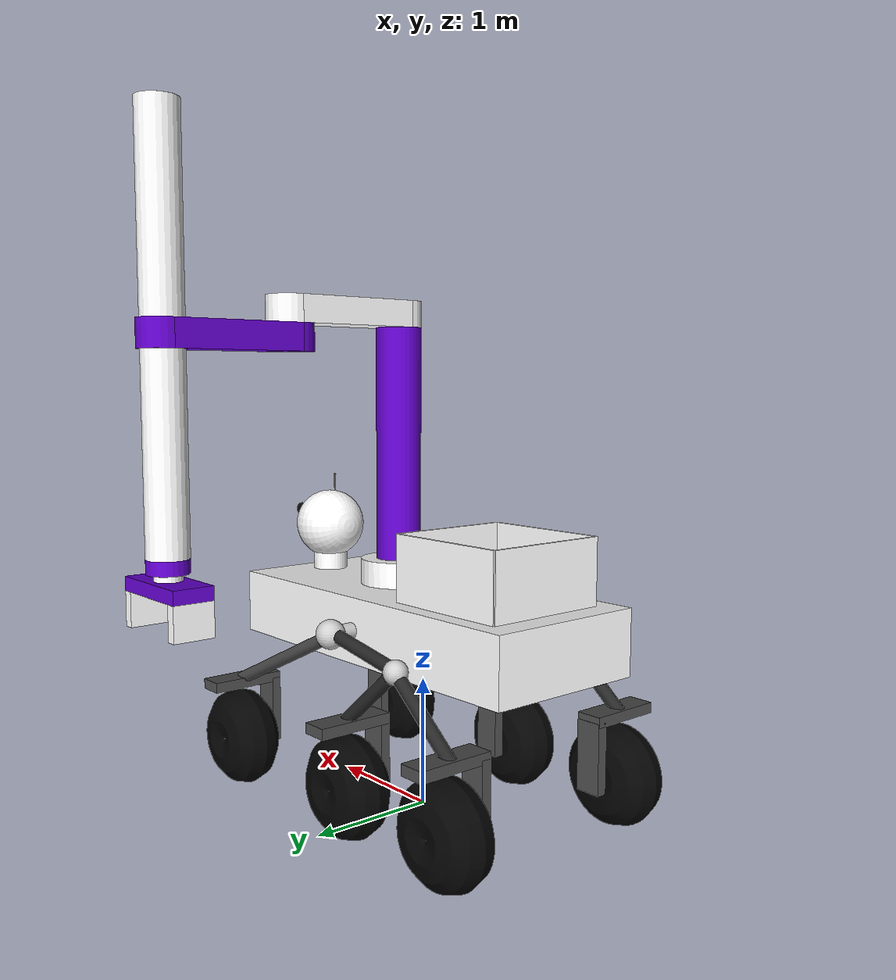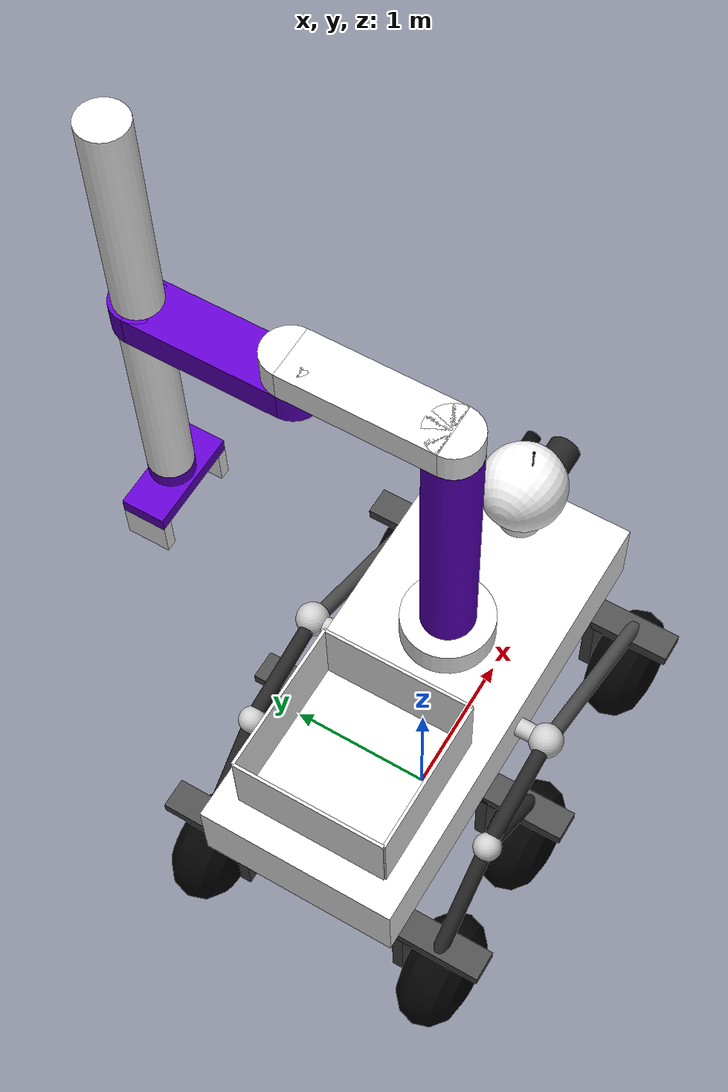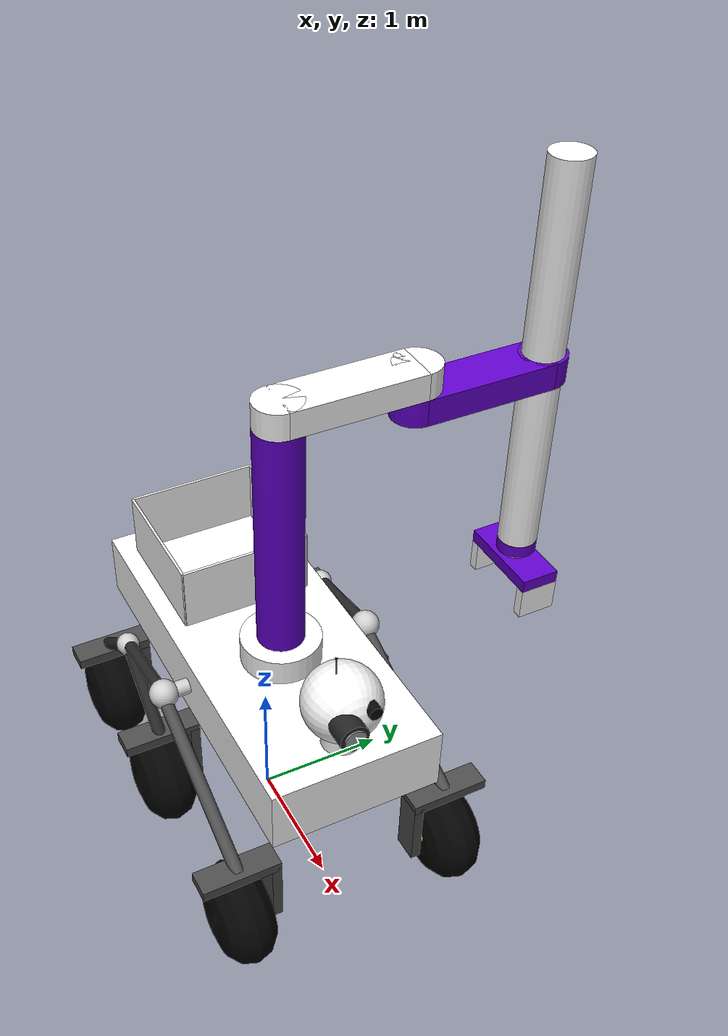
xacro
<?xml version="1.0"?>
<!-- created with Phobos 1.0.1 "Capricious Choutengan" -->
<robot name="speedy" xmlns:xacro="http://wiki.ros.org/xacro">
    <!-- INCLUDES -->
    <xacro:include filename="$(find speedy_description)/urdf/base/robot_base.urdf.xacro"/>
    <xacro:include filename="$(find speedy_description)/urdf/wheels/wheels_chasis.urdf.xacro"/>
    <xacro:include filename="$(find speedy_description)/urdf/wheels/rover_wheel.urdf.xacro"/>
    <xacro:include filename="$(find speedy_description)/urdf/utils/utils.urdf.xacro"/>
    <xacro:include filename="$(find speedy_description)/urdf/arm/scara.urdf.xacro"/>
    <xacro:include filename="$(find speedy_description)/urdf/arm/gripper.urdf.xacro"/>
    <xacro:include filename="$(find speedy_description)/urdf/sensors/sensor_camera.urdf.xacro"/>
    <xacro:include filename="$(find speedy_description)/urdf/sensors/sensor_imu.urdf.xacro"/>

    <!-- ARGUMENTS -->
    <xacro:arg name="robot_ns" default=""/>
    <xacro:arg name="prefix" default=""/>
    <xacro:arg name="init_scara_yaw" default="${PI/2}"/>

    <!-- PROPERTIES -->
    <xacro:property name="right_wheels_chasis_offset"
                    value="0.05549 -0.67542 0.00000"/>

    <xacro:property name="left_wheels_chasis_offset"
                    value="0.05549 0.67542 0.00000"/>

    <xacro:property name="front_wheel_x_offset" value="1.3225"/>
    <xacro:property name="mid_wheel_x_offset" value="-0.149999"/>
    <xacro:property name="back_wheel_x_offset" value="-1.21623"/>

    <xacro:property name="wheel_y_offset" value="0.850214"/>

    <xacro:property name="wheel_z_offset" value="-1.08428"/>

    <xacro:property name="fr_wheel_xyz"
                    value="${front_wheel_x_offset} ${-wheel_y_offset} ${wheel_z_offset}"/>

    <xacro:property name="mr_wheel_xyz"
                    value="${mid_wheel_x_offset} ${-wheel_y_offset} ${wheel_z_offset}"/>

    <xacro:property name="br_wheel_xyz"
                    value="${back_wheel_x_offset} ${-wheel_y_offset} ${wheel_z_offset}"/>

    <xacro:property name="fl_wheel_xyz"
                    value="${front_wheel_x_offset} ${wheel_y_offset} ${wheel_z_offset}"/>

    <xacro:property name="ml_wheel_xyz"
                    value="${mid_wheel_x_offset} ${wheel_y_offset} ${wheel_z_offset}"/>

    <xacro:property name="bl_wheel_xyz"
                    value="${back_wheel_x_offset} ${wheel_y_offset} ${wheel_z_offset}"/>

    <xacro:property name="right_wheels_rpy"
                    value="${-PI/2} 0.00000 0.0000"/>

    <xacro:property name="left_wheels_rpy"
                    value="${PI/2} 0.00000 0.0000"/>

    <!-- ROBOT PARTS -->

    <!-- base -->
    <xacro:robot_base   base_height="1.47428"
                        white_material="Material.008"
                        prefix="$(arg prefix)"/>

    <!-- wheels -->
    <xacro:wheels_chasis  side="right"
                          xyz="${right_wheels_chasis_offset}"
                          parent_link="$(arg prefix)base_link"
                          prefix="$(arg prefix)"/>

    <xacro:rover_wheel  side="right"
                        pos="front"
                        parent_link="$(arg prefix)base_link"
                        xyz="${fr_wheel_xyz}"
                        rpy="${right_wheels_rpy}"
                        wheel_material="Material.009"
                        prefix="$(arg prefix)"/>

    <xacro:rover_wheel  side="right"
                        pos="mid"
                        parent_link="$(arg prefix)base_link"
                        xyz="${mr_wheel_xyz}"
                        rpy="${right_wheels_rpy}"
                        wheel_material="Material.009"
                        prefix="$(arg prefix)"/>

    <xacro:rover_wheel  side="right"
                        pos="back"
                        parent_link="$(arg prefix)base_link"
                        xyz="${br_wheel_xyz}"
                        rpy="${right_wheels_rpy}"
                        wheel_material="Material.009"
                        prefix="$(arg prefix)"/>

    <xacro:wheels_chasis  side="left"
                          xyz="${left_wheels_chasis_offset}"
                          parent_link="$(arg prefix)base_link"
                          prefix="$(arg prefix)"/>

    <xacro:rover_wheel  side="left"
                        pos="front"
                        parent_link="$(arg prefix)base_link"
                        xyz="${fl_wheel_xyz}"
                        rpy="${left_wheels_rpy}"
                        wheel_material="Material.009"
                        prefix="$(arg prefix)"/>

    <xacro:rover_wheel  side="left"
                        pos="mid"
                        parent_link="$(arg prefix)base_link"
                        xyz="${ml_wheel_xyz}"
                        rpy="${left_wheels_rpy}"
                        wheel_material="Material.009"
                        prefix="$(arg prefix)"/>

    <xacro:rover_wheel  side="left"
                        pos="back"
                        parent_link="$(arg prefix)base_link"
                        xyz="${bl_wheel_xyz}"
                        rpy="${left_wheels_rpy}"
                        wheel_material="Material.009"
                        prefix="$(arg prefix)"/>

    <!-- arm -->
    <xacro:scara    x="0.30000"
                    y="0.00000"
                    z="0.35000"
                    roll="0.00000"
                    pitch="0.00000"
                    yaw="0.00000"
                    first_joint_yaw="${PI/2}"
                    column_height="1.8000"
                    parent_link="$(arg prefix)base_link"
                    white_material="Material.008"
                    purple_material="Material.027"
                    prefix="$(arg prefix)"/>

    <xacro:gripper  z_offset="0.07500"
                    parent_link="$(arg prefix)scara_wrist_link"
                    white_material="Material.008"
                    purple_material="Material.027"
                    prefix="$(arg prefix)"/>

    <!-- sensors -->
    <xacro:sensor_camera  prefix="$(arg prefix)front_"
                          parent_link="$(arg prefix)front_camera_objective_link"
                          xyz_offset="0.09844 -0.00000 0.00000"
                          rpy="0.00000 0.00000 0.0000"
                          robot_ns="$(arg robot_ns)"
                          video_width="640"
                          video_height="480"/>

    <xacro:sensor_camera  prefix="$(arg prefix)gripper_"
                          parent_link="$(arg prefix)gripper_base_link"
                          xyz_offset="0.000000 -0.05000 0.0000"
                          rpy="${-PI/2} 0.00000 ${-PI/2}"
                          robot_ns="$(arg robot_ns)"
                          video_width="640"
                          video_height="480"/>

    <xacro:sensor_imu prefix="$(arg prefix)base_"
                      parent_link="$(arg prefix)base_link"
                      xyz_offset="0.000000 -0.00000 0.00000"
                      rpy="0.00000 0.00000 0.00000"
                      robot_ns="$(arg robot_ns)"
                      topic="base_imu/data"/>

    <!-- GAZEBO ROS2 CONTROL -->
    <xacro:include filename="$(find speedy_description)/urdf/ros2_control.urdf.xacro"/>
    <xacro:arg name="config_controllers" default="$(find speedy_description)/config/speedy_controllers.yaml"/>
    <xacro:arg name="update_rate" default="20"/>
    <xacro:ros2_control frame_prefix="$(arg prefix)"/>

    <!-- MATERIALS -->
    <material name="Material">
      <color rgba="0.14902 0.14902 0.14902 1.00000"/>
    </material>
    <material name="Material.008">
      <color rgba="1.00000 1.00000 1.00000 1.00000"/>
    </material>
    <material name="Material.009">
        <color rgba="0.01176 0.01176 0.01176 1.00000"/>
    </material>
    <material name="Material.027">
        <color rgba="0.38039 0.00000 0.80000 1.00000"/>
    </material>

</robot>

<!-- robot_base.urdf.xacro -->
<!-- created with Phobos 1.0.1 "Capricious Choutengan" -->
<robot xmlns:xacro="http://wiki.ros.org/xacro">

  <xacro:include filename="$(find speedy_description)/urdf/utils/utils.urdf.xacro"/>

  <xacro:macro name="basket_wall" params="idx xyz rpy parent_link material prefix">
    <xacro:property name="name" value="basket_wall_${idx}"/>

    <link name="${prefix}${name}_link">
      <collision name="${name}_collision">
        <origin rpy="0.00000 0.00000 0.00000" xyz="0.00000 0.00000 0.00000"/>
        <geometry>
          <box size="1.02000 0.02000 0.50000"/>
        </geometry>
      </collision>
      <inertial>
        <xacro:solid_cuboid_inertia m="2.00000" w="0.02000" h="0.50000" d="1.02000"/>
        <origin rpy="0.00000 0.00000 0.00000" xyz="0.00000 0.00000 0.00000"/>
        <mass value="2.00000"/>
      </inertial>
      <visual name="${name}">
        <origin rpy="0.00000 0.00000 0.00000" xyz="0.00000 0.00000 0.00000"/>
        <material name="${material}"/>
        <geometry>
          <box size="1.00000 0.02000 0.50000"/>
        </geometry>
      </visual>
    </link>

    <joint name="${prefix}${name}_link_joint" type="fixed">
      <origin rpy="${rpy}" xyz="${xyz}"/>
      <parent link="${parent_link}"/>
      <child link="${prefix}${name}_link"/>
    </joint>

  </xacro:macro>

  <xacro:macro name="antena" params="length xyz rpy parent_link prefix">
    <link name="${prefix}antena_stem_link">
      <collision name="antena_stem_collision">
        <origin rpy="0.00000 0.00000 0.00000" xyz="0.00000 0.00000 0.00000"/>
        <geometry>
          <cylinder radius="0.00500" length="${length}"/>
        </geometry>
      </collision>
      <visual name="antena_stem">
        <origin rpy="0.00000 0.00000 0.00000" xyz="-0.00000 -0.00000 -0.00000"/>
        <material name="Material.006"/>
        <geometry>
          <cylinder radius="0.00500" length="${length}"/>
        </geometry>
      </visual>
    </link>

    <joint name="${prefix}antena_stem_link_joint" type="fixed">
      <origin rpy="0.00000 0.00000 0.00000" xyz="${xyz}"/>
      <parent link="${parent_link}"/>
      <child link="${prefix}antena_stem_link"/>
    </joint>

    <link name="${prefix}antena_top_link">
      <collision name="antena_top_collision">
        <origin rpy="0.00000 0.00000 0.00000" xyz="-0.00000 0.00000 -0.00000"/>
        <geometry>
          <sphere radius="0.01000"/>
        </geometry>
      </collision>
      <visual name="antena_top">
        <origin rpy="0.00000 0.00000 0.00000" xyz="-0.00000 0.00000 0.00000"/>
        <material name="Material.006"/>
        <geometry>
          <sphere radius="0.01000"/>
        </geometry>
      </visual>
    </link>

    <joint name="${prefix}antena_top_link_joint" type="fixed">
      <origin rpy="0.00000 0.00000 0.00000" xyz="0.00000 0.00000 ${length/2}"/>
      <parent link="${prefix}antena_stem_link"/>
      <child link="${prefix}antena_top_link"/>
    </joint>
  </xacro:macro>

  <xacro:macro name="robot_base" params="base_height white_material prefix">

    <link name="${prefix}base_footprint"/>
    <link name="${prefix}base_link">
      <collision name="base_collision">
        <origin rpy="0.00000 0.00000 0.00000" xyz="0.00000 0.00000 0.00000"/>
        <geometry>
          <box size="3.00000 1.30000 0.50000"/>
        </geometry>
      </collision>
      <inertial>
        <xacro:solid_cuboid_inertia m="500.00000" w="1.30000" h="0.50000" d="3.00000"/>
        <origin rpy="0.00000 0.00000 0.00000" xyz="0.00000 0.00000 0.00000"/>
        <mass value="500.00000"/>
      </inertial>
      <visual name="base">
        <origin rpy="0.00000 0.00000 0.00000" xyz="0.00000 0.00000 0.00000"/>
        <material name="${white_material}"/>
        <geometry>
          <box size="3.00000 1.30000 0.50000"/>
        </geometry>
      </visual>
    </link>

    <joint name="${prefix}base_link_joint" type="fixed">
      <origin xyz="0.00000 0.00000 ${base_height}" rpy="0.00000 0.00000 0.00000"/>
      <parent link="${prefix}base_footprint"/>
      <child link="${prefix}base_link"/>
    </joint>

    <xacro:basket_wall  idx="1"
                        xyz="-0.29819 0.00176 0.50000"
                        rpy="0.00000 0.00000 ${PI/2}"
                        parent_link="${prefix}base_link"
                        material="${white_material}"
                        prefix="${prefix}"/>

    <xacro:basket_wall  idx="2"
                        xyz="-0.79819 0.50176 0.50000"
                        rpy="0.00000 0.00000 0.00000"
                        parent_link="${prefix}base_link"
                        material="${white_material}"
                        prefix="${prefix}"/>

    <xacro:basket_wall  idx="3"
                        xyz="-1.29819 0.00176 0.50000"
                        rpy="0.00000 0.00000 ${PI/2}"
                        parent_link="${prefix}base_link"
                        material="${white_material}"
                        prefix="${prefix}"/>

    <xacro:basket_wall  idx="4"
                        xyz="-0.79819 -0.49824 0.50000"
                        rpy="0.00000 0.00000 0.00000"
                        parent_link="${prefix}base_link"
                        material="${white_material}"
                        prefix="${prefix}"/>

    <xacro:antena length="0.18157"
                  xyz="0.00005 -0.05002 0.324755"
                  rpy="0.00000 0.00000 0.00000"
                  parent_link="${prefix}head_link"
                  prefix="${prefix}"/>

    <link name="${prefix}camera_2_link">
      <collision name="camera_2_collision">
        <origin rpy="0.00000 ${PI/2} 0.00000" xyz="0.00000 0.00000 0.00000"/>
        <geometry>
          <mesh filename="package://speedy_description/meshes/dae/Cylinder.009.dae" scale="1.00000 1.00000 1.00000"/>
        </geometry>
      </collision>
      <visual name="camera_2">
        <origin rpy="0.00000 ${PI/2} 0.00000" xyz="0.00000 0.00000 0.00000"/>
        <material name="Material.007"/>
        <geometry>
          <mesh filename="package://speedy_description/meshes/dae/Cylinder.009.dae" scale="1.00000 1.00000 1.00000"/>
        </geometry>
      </visual>
    </link>
    <joint name="${prefix}camera_2_link_joint" type="fixed">
      <origin rpy="0.00000 0.0000 0.00000" xyz="0.24339 0.09495 0.10749"/>
      <parent link="${prefix}head_link"/>
      <child link="${prefix}camera_2_link"/>
    </joint>

    <link name="${prefix}front_camera_lens_link">
      <collision name="camera_collision">
        <origin rpy="0.00000 ${PI/2} 0.00000" xyz="0.00000 -0.00000 -0.00000"/>
        <geometry>
          <cylinder radius="0.0764605" length="0.02"/>
        </geometry>
      </collision>
      <visual name="camera">
        <origin rpy="0.00000 ${PI/2} 0.00000" xyz="0.00000 0.00000 -0.00000"/>
        <material name="grey"/>
        <geometry>
          <cylinder radius="0.0764605" length="0.02"/>
        </geometry>
      </visual>
    </link>

    <joint name="${prefix}camera_lens_link_joint" type="fixed">
      <origin rpy="-0.00000 0.000 0.00000" xyz="0.36378 -0.09634 0.02978"/>
      <parent link="${prefix}head_link"/>
      <child link="${prefix}front_camera_lens_link"/>
    </joint>

    <link name="${prefix}front_camera_objective_link">
      <collision name="camera_collision">
        <origin rpy="0.00000 ${PI/2} 0.00000" xyz="0.00000 -0.00000 -0.00000"/>
        <geometry>
          <mesh filename="package://speedy_description/meshes/dae/Cylinder.004.dae" scale="0.35487 0.35487 0.44358"/>
        </geometry>
      </collision>
      <visual name="camera">
        <origin rpy="0.00000 ${PI/2} 0.00000" xyz="0.00000 0.00000 -0.00000"/>
        <material name="Material.005"/>
        <geometry>
          <mesh filename="package://speedy_description/meshes/dae/Cylinder.004.dae" scale="0.35487 0.35487 0.44358"/>
        </geometry>
      </visual>
    </link>
    <joint name="${prefix}camera_objective_link_joint" type="fixed">
      <origin rpy="0.00000 0.0000 0.00000" xyz="0.27441 -0.09634 0.02978"/>
      <parent link="${prefix}head_link"/>
      <child link="${prefix}front_camera_objective_link"/>
    </joint>

    <link name="${prefix}head_link">
      <collision name="head_collision">
        <origin rpy="0.00000 ${PI/2} 0.00000" xyz="0.00000 0.00016 -0.00000"/>
        <geometry>
          <mesh filename="package://speedy_description/meshes/dae/Sphere.001.dae" scale="0.35487 0.35487 0.35487"/>
        </geometry>
      </collision>
      <visual name="head">
        <origin rpy="0.00000 ${PI/2} 0.00000" xyz="0.00000 0.00016 -0.00000"/>
        <material name="${white_material}"/>
        <geometry>
          <mesh filename="package://speedy_description/meshes/dae/Sphere.001.dae" scale="0.35487 0.35487 0.35487"/>
        </geometry>
      </visual>
    </link>
    <joint name="${prefix}head_link_joint" type="fixed">
      <origin rpy="0.00000 0.00000 0.00000" xyz="0.00000 -0.00016 0.31030"/>
      <parent link="${prefix}neck_link"/>
      <child link="${prefix}head_link"/>
    </joint>

    <link name="${prefix}neck_link">
      <collision name="neck_collision">
        <origin rpy="0.00000 0.00000 0.00000" xyz="0.00000 -0.00016 -0.00000"/>
        <geometry>
          <mesh filename="package://speedy_description/meshes/dae/Cylinder.007.dae" scale="0.70974 0.70974 0.70974"/>
        </geometry>
      </collision>
      <inertial>
        <inertia ixx="0.00000" ixy="0.00000" ixz="0.00000" iyy="0.00000" iyz="0.00000" izz="0.00000"/>
        <origin rpy="0.00000 0.00000 0.00000" xyz="0.00000 -0.00016 -0.00000"/>
        <mass value="0.70000"/>
      </inertial>
      <visual name="neck">
        <origin rpy="0.00000 0.00000 0.00000" xyz="0.00000 -0.00016 -0.00000"/>
        <material name="${white_material}"/>
        <geometry>
          <mesh filename="package://speedy_description/meshes/dae/Cylinder.007.dae" scale="0.70974 0.70974 0.70974"/>
        </geometry>
      </visual>
    </link>
    <joint name="${prefix}neck_link_joint" type="fixed">
      <origin rpy="0.00000 0.00000 0.00000" xyz="1.23325 0.00000 0.32189"/>
      <parent link="${prefix}base_link"/>
      <child link="${prefix}neck_link"/>
    </joint>

  </xacro:macro>

  <material name="Material.005">
    <color rgba="0.14118 0.14118 0.14118 1.00000"/>
  </material>
  <material name="grey">
    <color rgba="0.6 0.6 0.6 1.0000"/>
  </material>
  <material name="Material.007">
    <color rgba="0.02745 0.02745 0.02745 1.00000"/>
  </material>
  <material name="Material.006">
      <color rgba="0.00000 0.00000 0.00000 1.00000"/>
  </material>

</robot>

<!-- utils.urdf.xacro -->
<!-- created with Phobos 1.0.1 "Capricious Choutengan" -->
<robot xmlns:xacro="http://wiki.ros.org/xacro">
    <xacro:property name="PI" value="3.1415926535897931"/>

    <xacro:macro name="solid_cuboid_inertia" params="m w h d">
        <inertia    ixx="${(m*(h*h+d*d))/12}"   ixy = "0"                   ixz = "0"
                                                iyy="${(m*(w*w+h*h))/12}"   iyz = "0"
                                                                            izz="${(m*(w*w+d*d))/12}"/>
    </xacro:macro>

    <xacro:macro name="slender_rod_end_inertia" params="m l">
        <inertia    ixx="${(m*l*l)/3}"  ixy = "0"   ixz = "0"
                                        iyy="0"     iyz = "0"
                                                    izz="${(m*l*l)/3}"/>
    </xacro:macro>

</robot>

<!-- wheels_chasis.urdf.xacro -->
<!-- created with Phobos 1.0.1 "Capricious Choutengan" -->
<robot xmlns:xacro="http://wiki.ros.org/xacro">

  <xacro:include filename="$(find speedy_description)/urdf/utils/utils.urdf.xacro"/>

  <xacro:macro name="wheel_support" params="pos side xyz rpy prefix">

    <xacro:property name="top_support_rpy" value="3.1415926535897931"/>

    <xacro:if value="${side == 'left'}">
      <xacro:property name="lateral_support_xyz" value="-0.00000 -0.27811 0.26370"/>
      <xacro:property name="axis_xyz" value="0.00301 -0.18957 -0.06954"/>

    </xacro:if>

    <xacro:if value="${side == 'right'}">
      <xacro:property name="lateral_support_xyz" value="-0.00000 -0.27811 -0.26370"/>
      <xacro:property name="axis_xyz" value="0.00301 -0.18957 0.06954"/>

    </xacro:if>

    <!-- TOP -->

    <link name="${prefix}${pos}_${side}_wheel_top_support_link">
      <collision name="${pos}_${side}_wheel_top_support_collision">
        <origin rpy="-0.00000 -0.00000 -0.00000" xyz="-0.00000 0.00000 -0.00000"/>
        <geometry>
          <mesh filename="package://speedy_description/meshes/dae/Cube.018.dae" scale="0.10000 0.04007 0.30000"/>
        </geometry>
      </collision>
      <inertial>
        <inertia ixx="0.15268" ixy="0.00000" ixz="-0.00000" iyy="0.01934" iyz="-0.00000" izz="0.16667"/>
        <origin rpy="0.00000 0.00000 0.00000" xyz="-0.00000 0.00000 0.00000"/>
        <mass value="5.00000"/>
      </inertial>
      <visual name="${pos}_${side}_wheel_top_support">
        <origin rpy="-0.00000 -0.00000 -0.00000" xyz="-0.00000 0.00000 0.00000"/>
        <material name="Material.010"/>
        <geometry>
          <box size="0.20000 0.08013 0.60000"/>
        </geometry>
      </visual>
    </link>

    <joint name="${prefix}${pos}_${side}_wheel_top_support_link_joint" type="fixed">
      <origin rpy="${rpy}" xyz="${xyz}"/>
      <parent link="${prefix}${pos}_${side}_leg_link"/>
      <child link="${prefix}${pos}_${side}_wheel_top_support_link"/>
    </joint>

    <!-- LATERAL -->

    <link name="${prefix}${pos}_${side}_wheel_lateral_sup_link">
      <collision name="${pos}_${side}_wheel_lateral_sup_collision">
        <origin rpy="-0.00000 0.00000 0.00000" xyz="-0.00000 -0.00000 -0.00000"/>
        <geometry>
          <mesh filename="package://speedy_description/meshes/dae/Cube.003.dae" scale="0.10000 0.26800 0.03775"/>
        </geometry>
      </collision>
      <inertial>
        <inertia ixx="0.12208" ixy="0.00000" ixz="0.00000" iyy="0.13637" iyz="0.00000" izz="0.01904"/>
        <origin rpy="0.00000 0.00000 0.00000" xyz="-0.00000 -0.00000 -0.00000"/>
        <mass value="5.00000"/>
      </inertial>
      <visual name="${pos}_${side}_wheel_lateral_sup">
        <origin rpy="-0.00000 0.00000 0.00000" xyz="-0.00000 -0.00000 -0.00000"/>
        <material name="Material.010"/>
        <geometry>
          <box size="0.20000 0.53600 0.07550"/>
        </geometry>
      </visual>
    </link>

    <joint name="${prefix}${pos}_${side}_wheel_lateral_sup_link_joint" type="fixed">
      <origin rpy="-0.00000 0.00000 0.00000" xyz="${lateral_support_xyz}"/>
      <parent link="${prefix}${pos}_${side}_wheel_top_support_link"/>
      <child link="${prefix}${pos}_${side}_wheel_lateral_sup_link"/>
    </joint>

    <!-- AXIS -->

    <link name="${prefix}${pos}_${side}_wheel_axis_link">
      <collision name="${pos}_${side}_wheel_axis_collision">
        <origin rpy="${PI/2} -0.00000 -0.00000" xyz="-0.00000 0.00000 -0.00000"/>
        <geometry>
          <mesh filename="package://speedy_description/meshes/dae/Cylinder.003.dae" scale="0.70000 0.70000 2.00000"/>
        </geometry>
      </collision>
      <inertial>
        <inertia ixx="0.00728" ixy="-0.00000" ixz="0.00000" iyy="0.00122" iyz="-0.00000" izz="0.00728"/>
        <origin rpy="0.00000 0.00000 0.00000" xyz="-0.00000 0.00000 -0.00000"/>
        <mass value="2.00000"/>
      </inertial>
      <visual name="${pos}_${side}_wheel_axis">
        <origin rpy="${PI/2} -0.00000 0.00000" xyz="-0.00000 0.00000 -0.00000"/>
        <geometry>
          <mesh filename="package://speedy_description/meshes/dae/Cylinder.003.dae" scale="0.70000 0.70000 2.00000"/>
        </geometry>
      </visual>
    </link>

    <joint name="${prefix}${pos}_${side}_wheel_axis_link_joint" type="fixed">
      <origin rpy="${-PI/2} 0.00000 0.00000" xyz="${axis_xyz}"/>
      <parent link="${prefix}${pos}_${side}_wheel_lateral_sup_link"/>
      <child link="${prefix}${pos}_${side}_wheel_axis_link"/>
    </joint>

  </xacro:macro>

  <xacro:macro name="wheels_chasis" params="side xyz parent_link prefix">

    <xacro:if value="${side == 'left'}">
      <xacro:property name="base_support_link_rpy" value="${PI/2} 0.00000 0.00000"/>
      <xacro:property name="legs_union_link_xyz" value="0.00000 0.00000 -0.16639"/>

    </xacro:if>

    <xacro:if value="${side == 'right'}">
      <xacro:property name="base_support_link_rpy" value="${PI/2} 0.00000 0.00000"/>
      <xacro:property name="legs_union_link_xyz" value="0.00000 0.00000 0.16639"/>

    </xacro:if>

    <xacro:if value="${side != 'left' and side != 'right'}">
      <xacro:error message="'side' parameter must be 'right' or 'left'."/>
    </xacro:if>

    <!-- ############# GENERAL ############# -->

    <link name="${prefix}${side}_wheels_base_support_link">
      <collision name="${prefix}${side}_wheels_base_support_collision">
        <origin rpy="-0.00000 0.00000 0.00000" xyz="0.00000 -0.00000 0.00000"/>
        <geometry>
          <mesh filename="package://speedy_description/meshes/dae/Cylinder.022.dae" scale="1.00000 1.00000 1.92308"/>
        </geometry>
      </collision>
      <inertial>
        <inertia ixx="0.00427" ixy="-0.00000" ixz="-0.00000" iyy="0.00125" iyz="-0.00000" izz="0.00427"/>
        <origin rpy="0.00000 0.00000 0.00000" xyz="0.00000 -0.00000 0.00000"/>
        <mass value="0.70000"/>
      </inertial>
      <visual name="${prefix}${side}_wheels_base_support">
        <origin rpy="0.00000 0.00000 0.00000" xyz="0.00000 -0.00000 0.00000"/>
        <material name="Material.016"/>
        <geometry>
          <mesh filename="package://speedy_description/meshes/dae/Cylinder.022.dae" scale="1.00000 1.00000 1.92308"/>
        </geometry>
      </visual>
    </link>
    <joint name="${prefix}${side}_wheels_base_support_link_joint" type="fixed">
      <origin rpy="${base_support_link_rpy}" xyz="${xyz}"/>
      <parent link="${parent_link}"/>
      <child link="${prefix}${side}_wheels_base_support_link"/>
    </joint>

    <link name="${prefix}${side}_legs_union_link">
      <collision name="${side}_legs_union_collision">
        <origin rpy="-0.00000 0.00000 0.00000" xyz="0.00000 0.00000 -0.00000"/>
        <geometry>
          <mesh filename="package://speedy_description/meshes/dae/Sphere.006.dae" scale="1.00000 1.00000 1.00000"/>
        </geometry>
      </collision>
      <inertial>
        <inertia ixx="0.00336" ixy="-0.00000" ixz="-0.00000" iyy="0.00336" iyz="-0.00000" izz="0.00334"/>
        <origin rpy="0.00000 0.00000 0.00000" xyz="0.00000 -0.00000 -0.00000"/>
        <mass value="0.70000"/>
      </inertial>
      <visual name="${side}_legs_union">
        <origin rpy="-0.00000 0.00000 0.00000" xyz="-0.00000 -0.00000 -0.00000"/>
        <material name="Material.016"/>
        <geometry>
          <mesh filename="package://speedy_description/meshes/dae/Sphere.006.dae" scale="1.00000 1.00000 1.00000"/>
        </geometry>
      </visual>
    </link>
    <joint name="${prefix}${side}_legs_union_link_joint" type="fixed">
      <origin rpy="-1.57080 0.00000 0.00000" xyz="${legs_union_link_xyz}"/>
      <parent link="${prefix}${side}_wheels_base_support_link"/>
      <child link="${prefix}${side}_legs_union_link"/>
    </joint>

    <link name="${prefix}mid_back_${side}_leg_link">
      <collision name="mid_back_${side}_leg_collision">
        <origin rpy="0.00000 -0.00000 -0.00000" xyz="-0.00000 0.00000 0.00000"/>
        <geometry>
          <mesh filename="package://speedy_description/meshes/dae/Cylinder.dae" scale="0.05000 0.05000 0.38165"/>
        </geometry>
      </collision>
      <inertial>
        <inertia ixx="0.00134" ixy="-0.00000" ixz="-0.00410" iyy="0.02459" iyz="0.00000" izz="0.02386"/>
        <origin rpy="0.00000 0.00000 0.00000" xyz="-0.00000 0.00000 0.00000"/>
        <mass value="0.50000"/>
      </inertial>
      <visual name="mid_back_${side}_leg">
        <origin rpy="-0.00000 0.00000 -0.00000" xyz="-0.00000 0.00000 0.00000"/>
        <material name="Material"/>
        <geometry>
          <mesh filename="package://speedy_description/meshes/dae/Cylinder.dae" scale="0.05000 0.05000 0.38165"/>
        </geometry>
      </visual>
    </link>
    <joint name="${prefix}mid_back_${side}_leg_link_joint" type="fixed">
      <origin rpy="-0.00000 1.39626 -0.00000" xyz="-0.41726 -0.00840 -0.06158"/>
      <parent link="${prefix}${side}_legs_union_link"/>
      <child link="${prefix}mid_back_${side}_leg_link"/>
    </joint>

    <link name="${prefix}${side}_mid_back_legs_support_link">
      <collision name="${side}_mid_back_legs_support_collision">
        <origin rpy="-0.00000 0.00000 0.00000" xyz="-0.00000 0.00000 0.00000"/>
        <geometry>
          <mesh filename="package://speedy_description/meshes/dae/Sphere.dae" scale="0.08862 0.08862 0.08862"/>
        </geometry>
      </collision>
      <inertial>
        <inertia ixx="0.00933" ixy="-0.00000" ixz="-0.00000" iyy="0.00933" iyz="-0.00000" izz="0.00930"/>
        <origin rpy="0.00000 0.00000 0.00000" xyz="-0.00000 0.00000 0.00000"/>
        <mass value="3.00000"/>
      </inertial>
      <visual name="${side}_mid_back_legs_support">
        <origin rpy="-0.00000 0.00000 0.00000" xyz="-0.00000 0.00000 0.00000"/>
        <material name="Material.002"/>
        <geometry>
          <mesh filename="package://speedy_description/meshes/dae/Sphere.dae" scale="0.08862 0.08862 0.08862"/>
        </geometry>
      </visual>
    </link>
    <joint name="${prefix}${side}_mid_back_legs_support_link_joint" type="fixed">
      <origin rpy="0.00000 -1.39626 -0.00000" xyz="0.01011 -0.00000 -0.33406"/>
      <parent link="${prefix}mid_back_${side}_leg_link"/>
      <child link="${prefix}${side}_mid_back_legs_support_link"/>
    </joint>

    <!-- ############# BACK ############# -->

    <link name="${prefix}back_${side}_leg_link">
      <collision name="back_${side}_leg_collision">
        <origin rpy="-0.00000 -0.00000 -0.00000" xyz="-0.00000 -0.00000 -0.00000"/>
        <geometry>
          <mesh filename="package://speedy_description/meshes/dae/Cylinder.006.dae" scale="0.05000 0.05000 0.39665"/>
        </geometry>
      </collision>

      <inertial>
        <inertia ixx="0.45308" ixy="-0.00000" ixz="-0.51035" iyy="1.06129" iyz="0.00000" izz="0.63306"/>
        <origin rpy="0.00000 0.00000 0.00000" xyz="-0.00000 0.00000 -0.00000"/>
        <mass value="20.00000"/>
      </inertial>
      <visual name="back_${side}_leg">
        <origin rpy="-0.00000 0.00000 -0.00000" xyz="-0.00000 0.00000 -0.00000"/>
        <material name="Material"/>
        <geometry>
          <mesh filename="package://speedy_description/meshes/dae/Cylinder.006.dae" scale="0.05000 0.05000 0.39665"/>
        </geometry>
      </visual>
    </link>
    <joint name="${prefix}back_${side}_leg_link_joint" type="fixed">
      <origin rpy="-0.00000 0.87266 -0.00000" xyz="-0.26585 0.00000 -0.22722"/>
      <parent link="${side}_mid_back_legs_support_link"/>
      <child link="back_${side}_leg_link"/>
    </joint>

    <xacro:wheel_support  pos="back"
                          side="${side}"
                          xyz="0.02992 0.00327 -0.36631"
                          rpy="1.57080 -0.87266 0.00000"
                          prefix="${prefix}"/>

    <!-- ############# FRONT ############# -->

    <link name="${prefix}front_${side}_leg_link">
      <collision name="front_${side}_leg_collision">
        <origin rpy="-0.00000 -0.00000 0.00000" xyz="-0.00000 -0.00000 -0.00000"/>
        <geometry>
          <mesh filename="package://speedy_description/meshes/dae/Cylinder.019.dae" scale="0.83333 0.83333 11.25616"/>
        </geometry>
      </collision>
      <inertial>
        <inertia ixx="0.99003" ixy="0.00000" ixz="2.04323" iyy="5.37175" iyz="0.00000" izz="4.41898"/>
        <origin rpy="0.00000 0.00000 0.00000" xyz="-0.00000 -0.00000 -0.00000"/>
        <mass value="30.00000"/>
      </inertial>
      <visual name="front_${side}_leg">
        <origin rpy="-0.00000 -0.00000 0.00000" xyz="-0.00000 0.00000 -0.00000"/>
        <material name="Material.010"/>
        <geometry>
          <mesh filename="package://speedy_description/meshes/dae/Cylinder.019.dae" scale="0.83333 0.83333 11.25615"/>
        </geometry>
      </visual>
    </link>
    <joint name="${prefix}front_${side}_leg_link_joint" type="fixed">
      <origin rpy="-0.00000 -1.13446 0.00000" xyz="0.63134 -0.00840 -0.30458"/>
      <parent link="${prefix}${side}_legs_union_link"/>
      <child link="${prefix}front_${side}_leg_link"/>
    </joint>

    <xacro:wheel_support  pos="front"
                          side="${side}"
                          xyz="-0.01282 0.00327 -0.70738"
                          rpy="${PI/2} 1.13446 0.00000"
                          prefix="${prefix}"/>

    <!-- ############# MID ############# -->
    <link name="${prefix}mid_${side}_leg_link">
      <collision name="mid_${side}_leg_collision">
        <origin rpy="-0.00000 0.00000 0.00000" xyz="0.00000 -0.00000 0.00000"/>
        <geometry>
          <mesh filename="package://speedy_description/meshes/dae/Cylinder.008.dae" scale="0.05000 0.05000 0.38165"/>
        </geometry>
      </collision>
      <inertial>
        <inertia ixx="0.42092" ixy="0.00000" ixz="0.47203" iyy="0.98347" iyz="0.00000" izz="0.58738"/>
        <origin rpy="0.00000 0.00000 0.00000" xyz="0.00000 0.00000 0.00000"/>
        <mass value="20.00000"/>
      </inertial>
      <visual name="mid_${side}_leg">
        <origin rpy="-0.00000 -0.00000 0.00000" xyz="0.00000 0.00000 0.00000"/>
        <material name="Material"/>
        <geometry>
          <mesh filename="package://speedy_description/meshes/dae/Cylinder.008.dae" scale="0.05000 0.05000 0.38165"/>
        </geometry>
      </visual>
    </link>
    <joint name="${prefix}mid_${side}_leg_link_joint" type="fixed">
      <origin rpy="-0.00000 -0.87266 0.00000" xyz="0.29137 0.00000 -0.24007"/>
      <parent link="${prefix}${side}_mid_back_legs_support_link"/>
      <child link="${prefix}mid_${side}_leg_link"/>
    </joint>

    <xacro:wheel_support  pos="mid"
                          side="${side}"
                          xyz="-0.02892 0.00327 -0.34752"
                          rpy="1.57080 0.87266 -0.00000"
                          prefix="${prefix}"/>

  </xacro:macro>

  <!-- MATERIALS -->
  <material name="Material.010">
    <color rgba="0.29804 0.29804 0.29804 1.00000"/>
  </material>
  <material name="Material.002">
    <color rgba="0.80000 0.80000 0.80000 1.00000"/>
  </material>
  <material name="Material.016">
    <color rgba="0.80000 0.80000 0.80000 1.00000"/>
  </material>

</robot>

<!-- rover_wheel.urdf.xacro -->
<!-- created with Phobos 1.0.1 "Capricious Choutengan" -->
<robot xmlns:xacro="http://wiki.ros.org/xacro">
  <xacro:macro name="rover_wheel" params="side pos parent_link xyz rpy wheel_material prefix">

    <xacro:if value="${side != 'left' and side != 'right'}">
      <xacro:error message="'side' parameter must be 'right' or 'left'."/>
    </xacro:if>

    <xacro:if value="${pos != 'front' and pos != 'mid' and pos != 'back'}">
      <xacro:error message="'pos' parameter must be 'front', 'mid' or 'back'."/>
    </xacro:if>

    <link name="${pos}_${side}_wheel_link">
      <collision name="${pos}_${side}_wheel_collision">
        <origin rpy="0.00000 -0.00000 -0.00000" xyz="-0.00000 -0.00000 -0.00000"/>
        <geometry>
          <mesh filename="package://speedy_description/meshes/dae/Torus.001.dae" scale="0.66102 0.66102 0.58333"/>
        </geometry>
        <surface>
          <friction>
            <ode>
              <mu>20.000000</mu>
              <mu2>20.000000</mu2>
              <fdir1>0.0000 0.0000 1.0000</fdir1>
              <slip1>0.50000</slip1>
              <slip2>0.50000</slip2>
            </ode>
          </friction>
        </surface>
      </collision>
      <inertial>
        <inertia ixx="0.08061" ixy="0.00000" ixz="-0.00000" iyy="0.12029" iyz="0.00000" izz="0.08061"/>
        <origin rpy="0.00000 0.00000 0.00000" xyz="-0.00000 -0.00000 -0.00000"/>
        <mass value="2.00000"/>
      </inertial>
      <visual name="${pos}_${side}_wheel">
        <origin rpy="0.00000 -0.00000 -0.00000" xyz="-0.00000 -0.00000 -0.00000"/>
        <material name="${wheel_material}"/>
        <geometry>
          <mesh filename="package://speedy_description/meshes/dae/Torus.001.dae" scale="0.66102 0.66102 0.58333"/>
        </geometry>
      </visual>
    </link>

    <joint name="${pos}_${side}_wheel_joint" type="continuous">
      <parent link="${parent_link}"/>
      <child link="${pos}_${side}_wheel_link"/>
      <origin xyz="${xyz}" rpy="${rpy}"/>
      <axis xyz="0.00000 0.00000 1.00000"/>
      <limit velocity="5.1282" effort="1000.0"/>
    </joint>

    <transmission name="${pos}_${side}_wheel_joint_trans">
      <type>transmission_interface/SimpleTransmission</type>
      <joint name="${pos}_${side}_wheel_joint">
        <hardwareInterface>hardware_interface/VelocityJointInterface</hardwareInterface>
      </joint>
      <actuator name="${pos}_${side}_wheel_joint_motor">
        <mechanicalReduction>1</mechanicalReduction>
      </actuator>
    </transmission>

    <gazebo reference="${pos}_${side}_wheel_link">
      <mu1>5</mu1>
      <mu2>5</mu2>
      <kp>2.72e6</kp>
      <kd>8.25e1</kd>
      <fdir1>0 0 0</fdir1>
      <maxContacts>4</maxContacts>
    </gazebo>

  </xacro:macro>

</robot>

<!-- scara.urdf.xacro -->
<!-- created with Phobos 1.0.1 "Capricious Choutengan" -->
<robot xmlns:xacro="http://wiki.ros.org/xacro">
    <xacro:include filename="$(find speedy_description)/urdf/utils/utils.urdf.xacro"/>

    <xacro:macro name="revolute_arm" params="name parent_link lower_lim upper_lim xyz rpy material prefix">

        <link name="${prefix}${name}_link">
            <collision name="${name}_collision">
                <origin rpy="0.00000 0.00000 -0.00000" xyz="0.00000 0.00000 0.00000"/>
                <geometry>
                    <cylinder radius="0.175" length="0.2"/>
                </geometry>
            </collision>
            <inertial>
                <xacro:slender_rod_end_inertia m="2.0000" l="1.0000"/>
                <origin rpy="0.00000 0.00000 0.00000" xyz="0.00000 0.00000 0.00000"/>
                <mass value="2.00000"/>
            </inertial>
                <visual name="${name}">
                <origin rpy="0.00000 0.00000 0.00000" xyz="0.00000 0.00000 0.00000"/>
                <material name="${material}"/>
                <geometry>
                    <cylinder radius="0.175" length="0.2"/>
                </geometry>
            </visual>
        </link>

        <joint name="${prefix}${name}_joint" type="revolute">
            <limit lower="${lower_lim}" upper="${upper_lim}" effort="1000.00000" velocity="100.00000"/>
            <origin rpy="${rpy}" xyz="${xyz}"/>
            <parent link="${parent_link}"/>
            <child link="${prefix}${name}_link"/>
            <axis xyz="0.00000 0.00000 1.00000"/>
        </joint>

        <link name="${prefix}${name}_extension_link">
            <collision name="${name}_extension_collision">
                <origin rpy="0.00000 0.00000 0.00000" xyz="0.00000 -0.00000 0.00000"/>
                <geometry>
                    <box size="1.00000 0.35000 0.20000"/>
                </geometry>
            </collision>
            <inertial>
                <inertia ixx="0.06771" ixy="0.00000" ixz="0.00000" iyy="0.43333" iyz="-0.00000" izz="0.46771"/>
                <origin rpy="0.00000 0.00000 0.00000" xyz="0.00000 0.00000 0.00000"/>
                <mass value="5.00000"/>
            </inertial>
            <visual name="${name}_extension">
                <origin rpy="0.00000 0.00000 -0.00000" xyz="0.00000 -0.00000 0.00000"/>
                <material name="${material}"/>
                <geometry>
                    <box size="1.00000 0.35000 0.20000"/>
                </geometry>
            </visual>
        </link>

        <joint name="${prefix}${name}_extension_joint" type="fixed">
            <origin rpy="0.00000 0.00000 -0.00000" xyz="0.50000 0.00000 -0.00000"/>
            <parent link="${prefix}${name}_link"/>
            <child link="${prefix}${name}_extension_link"/>
        </joint>

        <link name="${prefix}${name}_end_link">
            <collision name="${name}_end_collision">
                <origin rpy="0.00000 0.00000 -0.00000" xyz="0.00000 -0.00000 0.00000"/>
                <geometry>
                    <cylinder radius="0.175" length="0.2"/>
                </geometry>
            </collision>
            <inertial>
                <inertia ixx="0.02188" ixy="0.00000" ixz="-0.00000" iyy="0.02188" iyz="0.00000" izz="0.03043"/>
                <origin rpy="0.00000 0.00000 0.00000" xyz="0.00000 -0.00000 0.00000"/>
                <mass value="2.00000"/>
            </inertial>
            <visual name="${name}_end">
                <origin rpy="0.00000 0.00000 0.00000" xyz="0.00000 -0.00000 0.00000"/>
                <material name="${material}"/>
                <geometry>
                    <cylinder radius="0.175" length="0.2"/>
                </geometry>
            </visual>
        </link>

        <joint name="${prefix}${name}_end_joint" type="fixed">
            <origin rpy="0.00000 0.00000 -0.00000" xyz="0.50000 0.00000 -0.00000"/>
            <parent link="${prefix}${name}_extension_link"/>
            <child link="${prefix}${name}_end_link"/>
        </joint>

    </xacro:macro>

    <xacro:macro name="scara" params="x y z roll pitch yaw first_joint_yaw column_height parent_link white_material purple_material prefix">

        <!-- BASE -->
        <xacro:property name="scara_base_height" value="0.2"/>

        <link name="${prefix}scara_base_link">
            <collision name="scara_base_collision">
                <origin rpy="0.00000 0.00000 0.00000" xyz="-0.00000 0.00000 -0.00000"/>
                <geometry>
                    <mesh filename="package://speedy_description/meshes/dae/Cylinder.024.dae" scale="0.75000 0.75000 1.00000"/>
                </geometry>
            </collision>
            <visual name="scara_base">
                <origin rpy="0.00000 0.00000 0.00000" xyz="0.00000 0.00000 -0.00000"/>
                <material name="${white_material}"/>
                <geometry>
                    <mesh filename="package://speedy_description/meshes/dae/Cylinder.024.dae" scale="0.75000 0.75000 1.00000"/>
                </geometry>
            </visual>
        </link>

        <joint name="${prefix}scara_base_joint" type="fixed">
            <origin rpy="${roll} ${pitch} ${yaw}" xyz="${x} ${y} ${z}"/>
            <parent link="${parent_link}"/>
            <child link="${prefix}scara_base_link"/>
        </joint>

        <link name="${prefix}scara_base_column_link">
            <collision name="scara_base_column_collision">
                <origin rpy="0.00000 0.00000 0.00000" xyz="0.00000 0.00000 -0.00000"/>
                <geometry>
                    <mesh filename="package://speedy_description/meshes/dae/Cylinder.025.dae" scale="0.43750 0.43750 9.00000"/>
                </geometry>
            </collision>
            <inertial>
                <inertia ixx="2.77607" ixy="0.00000" ixz="-0.00000" iyy="2.77607" iyz="0.00000" izz="0.15214"/>
                <origin rpy="0.00000 0.00000 0.00000" xyz="-0.00000 0.00000 -0.00000"/>
                <mass value="10.00000"/>
            </inertial>
            <visual name="scara_base_column">
                <origin rpy="0.00000 0.00000 0.00000" xyz="-0.00000 0.00000 -0.00000"/>
                <material name="${purple_material}"/>
                <geometry>
                    <mesh filename="package://speedy_description/meshes/dae/Cylinder.025.dae" scale="0.43750 0.43750 9.00000"/>
                </geometry>
            </visual>
        </link>

        <joint name="${prefix}scara_base_column_joint" type="fixed">
            <origin rpy="0.00000 0.00000 0.00000" xyz="0.00000 0.00000 ${scara_base_height/2 + column_height/2}"/>
            <parent link="${prefix}scara_base_link"/>
            <child link="${prefix}scara_base_column_link"/>
        </joint>

        <!-- LINK 1 (ARM 1) -->

        <xacro:revolute_arm name="scara_revolute_arm_1"
                            parent_link="${parent_link}"
                            lower_lim="${-PI}"
                            upper_lim="${PI}"
                            xyz="0.30000 0.00000 ${scara_base_height + column_height + z}"
                            rpy="0.00000 0.00000 ${first_joint_yaw}"
                            material="${white_material}"
                            prefix="${prefix}"/>

        <!-- LINK 2 (ARM 2) -->

        <xacro:revolute_arm name="scara_revolute_arm_2"
                            parent_link="${prefix}scara_revolute_arm_1_link"
                            lower_lim="-2.75"
                            upper_lim="2.75"
                            xyz="1.00000 0.00000 -0.2"
                            rpy="0.00000 0.00000 0.00000"
                            material="${purple_material}"
                            prefix="${prefix}"/>

        <!-- LINK 3 (PRISMATIC) -->

        <link name="${prefix}scara_prismatic_link">
            <collision name="scara_prismatic_collision">
                <origin rpy="0.00000 0.00000 0.00000" xyz="0.00000 0.00000 0.00000"/>
                <geometry>
                    <cylinder radius="0.15" length="3.0"/>
                </geometry>
            </collision>
            <inertial>
                <inertia ixx="5.28912" ixy="0.00000" ixz="0.00000" iyy="5.28912" iyz="-0.00000" izz="0.07825"/>
                <origin rpy="0.00000 0.00000 0.00000" xyz="0.00000 0.00000 0.00000"/>
                <mass value="7.00000"/>
            </inertial>
            <visual name="scara_prismatic">
                <origin rpy="0.00000 0.00000 0.00000" xyz="0.00000 -0.00000 0.00000"/>
                <material name="${white_material}"/>
                <geometry>
                    <cylinder radius="0.15" length="3.0"/>
                </geometry>
            </visual>
        </link>

        <joint name="${prefix}scara_prismatic_joint" type="prismatic">
            <limit lower="-1.30" upper="1.30" effort="1000.00000" velocity="100.00000"/>
            <origin rpy="0.00000 0.00000 0.00000" xyz="1.00000 -0.00000 -0.00000"/>
            <parent link="${prefix}scara_revolute_arm_2_link"/>
            <child link="${prefix}scara_prismatic_link"/>
            <axis xyz="0.00000 0.00000 1.00000"/>
        </joint>

        <!-- LINK 4 (WRIST) -->

        <link name="${prefix}scara_wrist_link">
            <collision name="scara_wrist_collision">
                <origin rpy="3.14159 0.00000 -0.00000" xyz="0.00000 -0.00000 -0.00000"/>
                <geometry>
                    <cylinder radius="0.15" length="0.1"/>
                </geometry>
            </collision>
            <inertial>
                <inertia ixx="0.00642" ixy="-0.00000" ixz="-0.00000" iyy="0.00642" iyz="-0.00000" izz="0.01118"/>
                <origin rpy="0.00000 0.00000 0.00000" xyz="0.00000 0.00000 -0.00000"/>
                <mass value="1.00000"/>
            </inertial>
            <visual name="scara_wrist">
                <origin rpy="0.00000 0.00000 -0.00000" xyz="0.00000 0.00000 -0.00000"/>
                <material name="${purple_material}"/>
                <geometry>
                    <cylinder radius="0.15" length="0.1"/>
                </geometry>
            </visual>
        </link>

        <joint name="${prefix}scara_wrist_joint" type="revolute">
            <limit lower="-${PI}" upper="${PI}" effort="1000.00000" velocity="100.00000"/>
            <origin rpy="-${PI} 0.00000 0.00000" xyz="0.00000 0.00000 -1.55000"/>
            <parent link="${prefix}scara_prismatic_link"/>
            <child link="${prefix}scara_wrist_link"/>
            <axis xyz="0.00000 0.00000 1.00000"/>
        </joint>

    </xacro:macro>

</robot>

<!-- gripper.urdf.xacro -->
<!-- created with Phobos 1.0.1 "Capricious Choutengan" -->
<robot xmlns:xacro="http://wiki.ros.org/xacro">
    <xacro:include filename="$(find speedy_description)/urdf/utils/utils.urdf.xacro"/>

    <xacro:macro name="gripper_finger" params="side offset upper_lim parent_link material prefix">
        <xacro:if value="${side == 'left'}">
            <xacro:property name="axis" value="0.00000 1.00000 0.00000"/>
        </xacro:if>

        <xacro:if value="${side == 'right'}">
            <xacro:property name="axis" value="0.00000 -1.00000 0.00000"/>
        </xacro:if>

        <link name="${prefix}${side}_gripper_finger_link">
            <collision name="${side}_gripper_finger_collision">
                <origin rpy="-0.00000 0.00000 -0.00000" xyz="-0.00000 0.00000 -0.00000"/>
                <geometry>
                    <box size="0.30000 0.07500 0.25000"/>
                </geometry>
            </collision>
            <inertial>
                <inertia ixx="0.00114" ixy="-0.00000" ixz="0.00000" iyy="0.00254" iyz="0.00000" izz="0.00159"/>
                <origin rpy="0.00000 0.00000 0.00000" xyz="0.00000 0.00000 -0.00000"/>
                <mass value="0.20000"/>
            </inertial>
                <visual name="${side}_gripper_finger">
                <origin rpy="0.00000 0.00000 -0.00000" xyz="-0.00000 0.00000 -0.00000"/>
                <material name="${material}"/>
                <geometry>
                    <box size="0.30000 0.07500 0.25000"/>
                </geometry>
            </visual>
        </link>

        <joint name="${prefix}${side}_gripper_finger_joint" type="prismatic">
            <limit lower="0.00000" upper="${upper_lim}" effort="1000.00000" velocity="100.00000"/>
            <origin rpy="1.57080 0.00000 0.00000" xyz="0.00000 -0.17500 ${offset}"/>
            <parent link="${prefix}${parent_link}"/>
            <child link="${prefix}${side}_gripper_finger_link"/>
            <axis xyz="${axis}"/>
        </joint>

    </xacro:macro>

    <xacro:macro name="gripper" params="z_offset parent_link white_material purple_material prefix">
        <link name="${prefix}gripper_2_wrist_connection_link">
            <collision name="gripper_2_wrist_connection_collision">
                <origin rpy="3.14159 0.00000 -0.00000" xyz="0.00000 -0.00000 -0.00000"/>
                <geometry>
                    <cylinder radius="0.1" length="0.05"/>
                </geometry>
            </collision>
            <inertial>
                <inertia ixx="0.00135" ixy="-0.00000" ixz="0.00000" iyy="0.00135" iyz="-0.00000" izz="0.00248"/>
                <origin rpy="0.00000 0.00000 0.00000" xyz="0.00000 0.00000 -0.00000"/>
                <mass value="0.50000"/>
            </inertial>
                <visual name="gripper_2_wrist_connection">
                <origin rpy="0.00000 0.00000 -0.00000" xyz="0.00000 -0.00000 -0.00000"/>
                <material name="${white_material}"/>
                <geometry>
                    <cylinder radius="0.1" length="0.05"/>
                </geometry>
            </visual>
        </link>

        <joint name="${prefix}gripper_2_wrist_connection_joint" type="fixed">
            <origin rpy="0.00000 0.00000 -0.00000" xyz="0.00000 0.00000 ${z_offset}"/>
            <parent link="${parent_link}"/>
            <child link="${prefix}gripper_2_wrist_connection_link"/>
        </joint>

        <link name="${prefix}gripper_base_link">
            <collision name="gripper_base_collision">
                <origin rpy="1.57080 0.00000 0.00000" xyz="0.00000 0.00000 -0.00000"/>
                <geometry>
                    <box size="0.30000 0.70000 0.10000"/>
                </geometry>
            </collision>
            <inertial>
                <inertia ixx="0.04167" ixy="-0.00000" ixz="0.00000" iyy="0.00833" iyz="-0.00000" izz="0.04833"/>
                <origin rpy="0.00000 0.00000 0.00000" xyz="0.00000 0.00000 0.00000"/>
                <mass value="1.00000"/>
            </inertial>
            <visual name="gripper_base">
                <origin rpy="1.57080 -0.00000 -0.00000" xyz="0.00000 0.00000 0.00000"/>
                <material name="${purple_material}"/>
                <geometry>
                    <box size="0.30000 0.70000 0.10000"/>
                </geometry>
            </visual>
        </link>

        <joint name="${prefix}gripper_base_link_joint" type="fixed">
            <origin rpy="-1.57080 0.00000 -0.00000" xyz="0.00000 -0.00000 0.07500"/>
            <parent link="${prefix}gripper_2_wrist_connection_link"/>
            <child link="${prefix}gripper_base_link"/>
        </joint>

        <xacro:gripper_finger   side="right"
                                offset="0.31251"
                                upper_lim="0.28"
                                parent_link="${prefix}gripper_base_link"
                                material="${white_material}"
                                prefix="${prefix}"/>

        <xacro:gripper_finger   side="left"
                                offset="-0.31251"
                                upper_lim="0.28"
                                parent_link="${prefix}gripper_base_link"
                                material="${white_material}"
                                prefix="${prefix}"/>

    </xacro:macro>

</robot>

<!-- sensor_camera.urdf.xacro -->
<!-- created with Phobos 1.0.1 "Capricious Choutengan" -->
<robot xmlns:xacro="http://wiki.ros.org/xacro">
    <xacro:include filename="$(find speedy_description)/urdf/utils/utils.urdf.xacro"/>

    <xacro:macro name="sensor_camera" params="prefix parent_link xyz_offset rpy robot_ns video_width video_height">
        <link name="${prefix}camera_frame"/>
        <joint name="${prefix}camera_joint" type="fixed">
            <origin rpy="${rpy}" xyz="${xyz_offset}"/>
            <parent link="${parent_link}"/>
            <child link="${prefix}camera_frame"/>
        </joint>

        <link name="${prefix}camera_optical_frame"/>
        <joint name="${prefix}optical_frame_joint" type="fixed">
            <origin rpy="${-PI/2} 0.00000 ${-PI/2}" xyz="0.00000 0.00000 0.00000"/>
            <parent link="${prefix}camera_frame"/>
            <child link="${prefix}camera_optical_frame"/>
        </joint>

        <gazebo reference="${prefix}camera_frame">
            <sensor name="${prefix}sensor" type="camera">
                <visualize>true</visualize>
                <update_rate>30</update_rate>
                <topic>${robot_ns}/${prefix}camera/image</topic>
                <camera>
                    <horizontal_fov>${radians(float(90))}</horizontal_fov>
                    <image>
                        <width>${video_width}</width>
                        <height>${video_height}</height>
                        <format>R8G8B8</format>
                    </image>
                    <clip>
                        <near>0.10</near>
                        <far>15.0</far>
                    </clip>
                    <noise>
                        <type>gaussian</type>
                        <mean>0.0</mean>
                        <stddev>0.007</stddev>
                    </noise>
                    <optical_frame_id>${prefix}camera_frame</optical_frame_id>
                </camera>
            </sensor>
        </gazebo>

    </xacro:macro>

</robot>

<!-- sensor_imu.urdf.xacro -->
<!-- created with Phobos 1.0.1 "Capricious Choutengan" -->
<robot xmlns:xacro="http://wiki.ros.org/xacro">
    <xacro:include filename="$(find speedy_description)/urdf/utils/utils.urdf.xacro"/>

    <xacro:macro name="sensor_imu" params="prefix parent_link xyz_offset rpy robot_ns topic">
        <joint name="${prefix}imu_sensor_joint" type="fixed">
            <origin rpy="${rpy}" xyz="${xyz_offset}"/>
            <parent link="${parent_link}"/>
            <child link="${prefix}imu_sensor_link"/>
        </joint>

        <link name="${prefix}imu_sensor_link"/>

        <gazebo reference="${prefix}imu_sensor_link">
            <sensor name="${prefix}sensor" type="imu">
                <always_on>1</always_on>
                <update_rate>30</update_rate>
                <topic>${robot_ns}/${topic}</topic>
            </sensor>
        </gazebo>
    </xacro:macro>

</robot>
